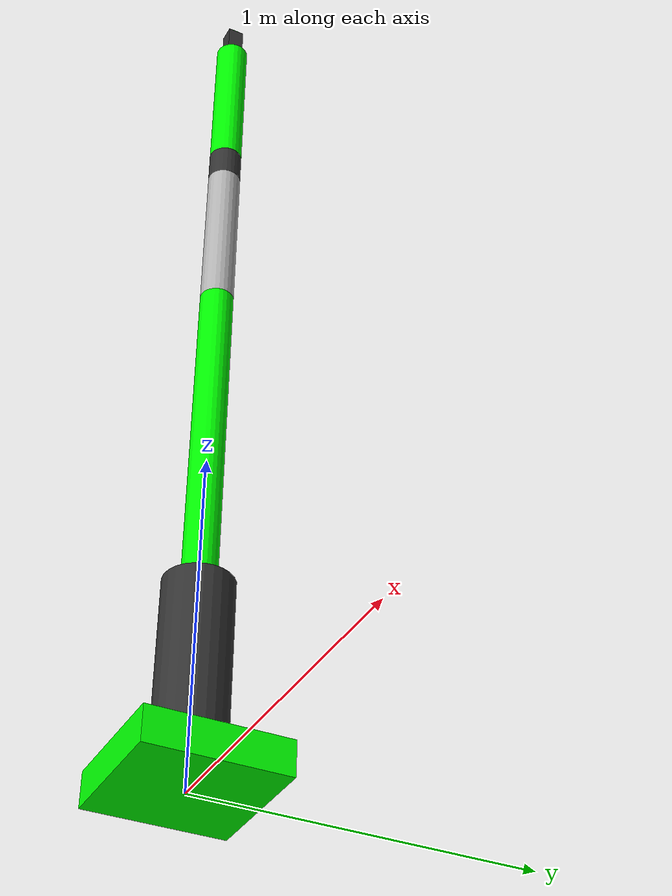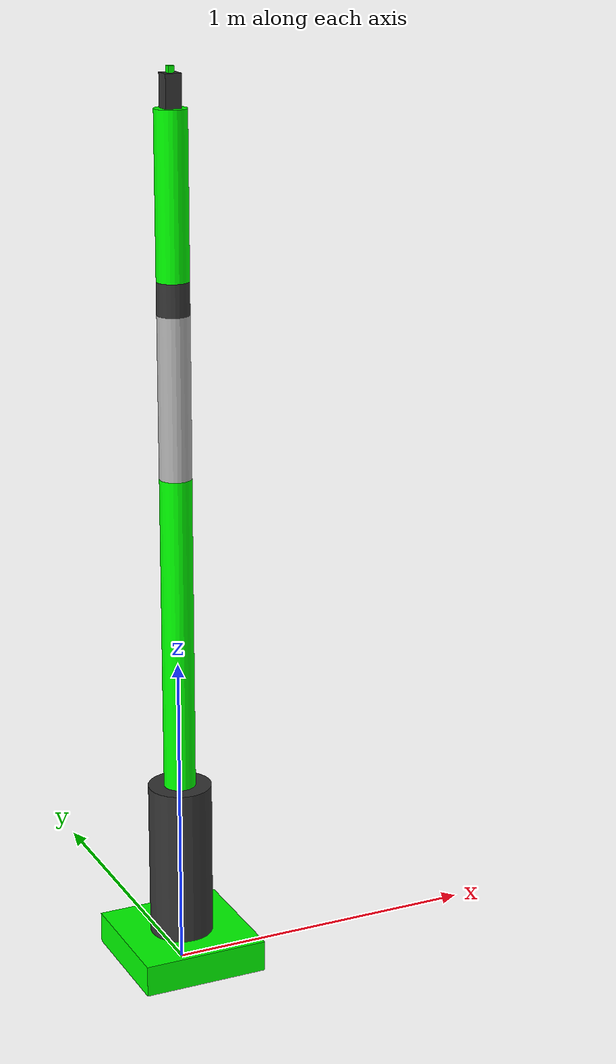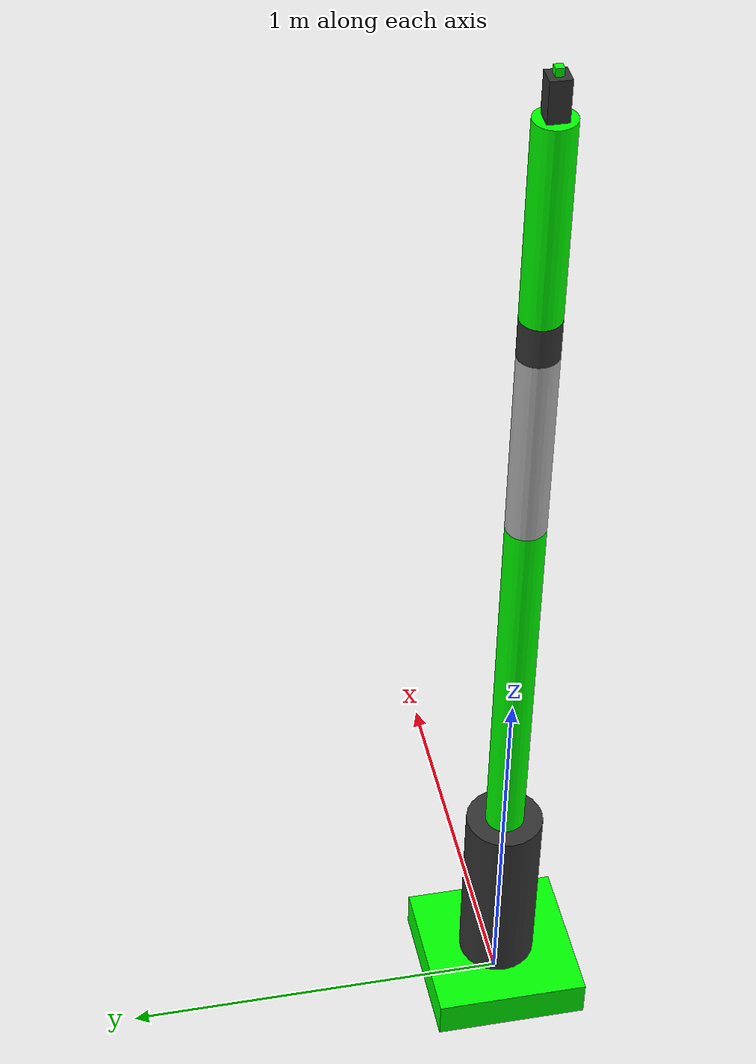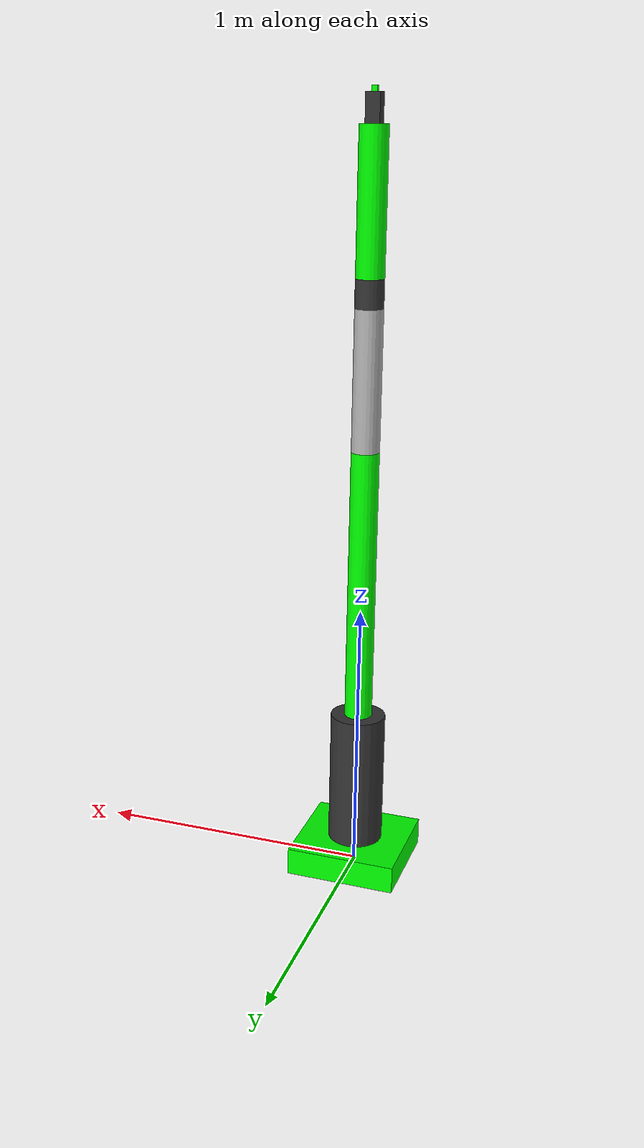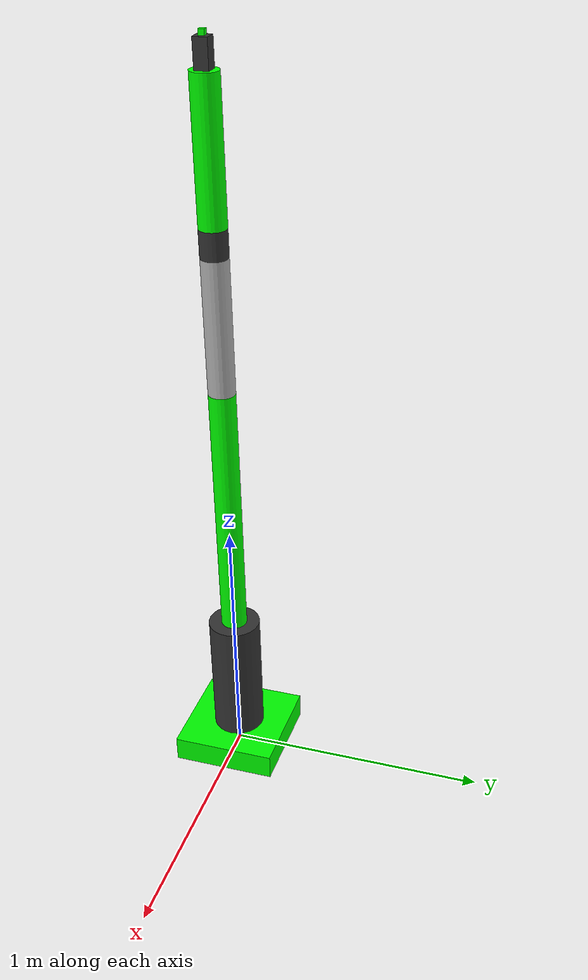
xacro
<?xml version="1.0"?>
<robot xmlns:xacro="http://www.ros.org/wiki/xacro" name="my_robot7">
    <xacro:arg name="initial_positions_file" default="initial_positions.yaml" />

    <!-- Import my_robot7 urdf file -->
    <xacro:include filename="$(find my_robot_description)/urdf/my_robot7.urdf" />

    <!-- Import control_xacro -->
    <xacro:include filename="my_robot7.ros2_control.xacro" />

    <xacro:my_robot7_ros2_control name="FakeSystem" initial_positions_file="$(arg initial_positions_file)"/>

</robot>

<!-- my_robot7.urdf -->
<robot name="my_robot7">

  <material name="green">
    <color rgba="0.0 1.0 0.0 1.0"/>
  </material>

  <material name="grey">
    <color rgba="0.2 0.2 0.2 1.0"/>
  </material>

  <link name="base_link">
    <visual>
      <geometry>
        <box size="0.4 0.4 0.1"/>
      </geometry>
      <origin xyz="0 0 0.05" rpy="0 0 0"/>
      <material name="green"/>
    </visual>
     <collision>
      <geometry>
        <box size="0.4 0.4 0.1"/>
      </geometry>
      <origin xyz="0 0 0.05" rpy="0 0 0"/>
    </collision>
  </link>

  <link name="shoulder_link">
    <visual>
      <geometry>
        <cylinder radius="0.1" length="0.5"/>
      </geometry>
      <origin xyz="0 0 0.25" rpy="0 0 1.57"/>
      <material name="grey"/>
    </visual>
    <collision>
      <geometry>
        <cylinder radius="0.1" length="0.5"/>
      </geometry>
      <origin xyz="0 0 0.25" rpy="0 0 0"/>
    </collision>
  </link>

  <link name="arm_link">
    <visual>
      <geometry>
        <cylinder radius="0.05" length="1.0"/>
      </geometry>
      <origin xyz="0 0 0.5" rpy="0 0 1.57"/>
      <material name="green"/>
    </visual>
    <collision>
      <geometry>
        <cylinder radius="0.05" length="0.6"/>
      </geometry>
      <origin xyz="0 0 0.3" rpy="0 0 0"/>
    </collision>
  </link>

  <link name="elbow_link">
    <visual>
      <geometry>
        <cylinder radius="0.05" length="0.1"/>
      </geometry>
      <origin xyz="0 0 0.05" rpy="0 0 1.57"/>
      <material name="grey"/>
    </visual>
    <collision>
      <geometry>
        <cylinder radius="0.05" length="0.1"/>
      </geometry>
      <origin xyz="0 0 0.05" rpy="0 0 0"/>
    </collision>
  </link>

  <link name="forearm_link">
    <visual>
      <geometry>
        <cylinder radius="0.05" length="0.5"/>
      </geometry>
      <origin xyz="0 0 0.25" rpy="0 0 1.57"/>
      <material name="green"/>
    </visual>
    <collision>
      <geometry>
        <cylinder radius="0.05" length="0.5"/>
      </geometry>
      <origin xyz="0 0 0.25" rpy="0 0 0"/>
    </collision>
  </link>

  <link name="wrist_link">
    <visual>
      <geometry>
        <box size="0.05 0.05 0.1"/>
      </geometry>
      <origin xyz="0 0 0.05" rpy="0 0 1.57"/>
      <material name="grey"/>
    </visual>
    <collision>
      <geometry>
        <box size="0.05 0.05 0.1"/>
      </geometry>
      <origin xyz="0 0 0.05" rpy="0 0 0"/>
    </collision>
  </link>

  <link name="hand_link">
    <visual>
      <geometry>
        <box size="0.02 0.02 0.02"/>
      </geometry>
      <origin xyz="0 0 0.01" rpy="0 0 1.57"/>
      <material name="green"/>
    </visual>
    <collision>
      <geometry>
        <box size="0.02 0.02 0.02"/>
      </geometry>
      <origin xyz="0 0 0.01" rpy="0 0 0"/>
    </collision>
  </link>

 <link name="extra_link">
    <visual>
      <geometry>
        <cylinder radius="0.05" length="0.5"/>
      </geometry>
      <origin xyz="0 0 0.25" rpy="0 0 1.57"/>

    </visual>
    <collision>
      <geometry>
        <box size="0.02 0.02 0.02"/>
      </geometry>
      <origin xyz="0 0 0.01" rpy="0 0 0"/>
    </collision>
  </link>

  <link name="tool_link">
  </link>

  <joint name="joint_1" type="revolute">
     <limit effort="1000.0" lower="-3.14" upper="3.14" velocity="1.0"/>
     <parent link="base_link"/>
     <child link="shoulder_link"/>
     <origin xyz="0 0 0.1" rpy="0 0 0"/>
     <axis xyz="0 0 1"/>
  </joint>

  <joint name="joint_2" type="revolute">
     <limit effort="1000.0" lower="-1.57" upper="1.57" velocity="1.0"/>
     <parent link="shoulder_link"/>
     <child link="arm_link"/>
     <origin xyz="0 0 0.5" rpy="0 0 0"/>
     <axis xyz="1 0 0"/>
  </joint>

  <joint name="joint_7" type="revolute">
     <limit effort="1000.0" lower="-3.14" upper="3.14" velocity="1.0"/>
     <parent link="arm_link"/>
     <child link="extra_link"/>
     <origin xyz="0 0 1.0" rpy="0 0 0"/>
     <axis xyz="0 0 1"/>
  </joint>

  <joint name="joint_3" type="revolute">
     <limit effort="1000.0" lower="-1.57" upper="1.57" velocity="1.0"/>
     <parent link="extra_link"/>
     <child link="elbow_link"/>
     <origin xyz="0 0 0.5" rpy="0 0 0"/>
     <axis xyz="1 0 0"/>
  </joint>

  <joint name="joint_4" type="revolute">
     <limit effort="1000.0" lower="-3.14" upper="3.14" velocity="1.0"/>
     <parent link="elbow_link"/>
     <child link="forearm_link"/>
     <origin xyz="0 0 0.1" rpy="0 0 0"/>
     <axis xyz="0 0 1"/>
  </joint>

  <joint name="joint_5" type="revolute">
     <limit effort="1000.0" lower="-1.57" upper="1.57" velocity="1.0"/>
     <parent link="forearm_link"/>
     <child link="wrist_link"/>
     <origin xyz="0 0 0.5" rpy="0 0 0"/>
     <axis xyz="1 0 0"/>
  </joint>

   <joint name="joint_6" type="continuous">
     <parent link="wrist_link"/>
     <child link="hand_link"/>
     <origin xyz="0 0 0.1" rpy="0 0 0"/>
     <axis xyz="0 0 1"/>
  </joint>

  <joint name="hand_tool_joint" type="fixed">
    <parent link="hand_link"/>
    <child link="tool_link"/>
    <origin xyz="0 0 0" rpy="0 0 0"/>
  </joint>

  </robot>
